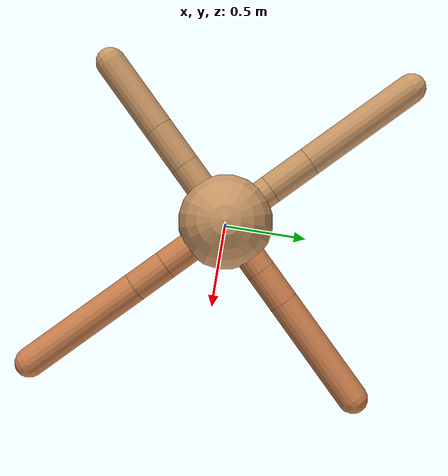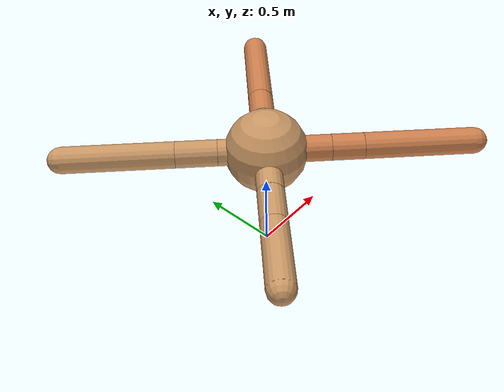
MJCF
<mujoco model="ant">
  <compiler angle="degree" coordinate="local" inertiafromgeom="true" />
  <option integrator="RK4" timestep="0.01" />
  <custom>
    <numeric data="0.0 0.0 0.55 1.0 0.0 0.0 0.0 0.0 1.0 0.0 -1.0 0.0 -1.0 0.0 1.0" name="init_qpos" />
  </custom>
  <default>
    <joint armature="1" damping="1" limited="true" />
    <geom conaffinity="0" condim="3" density="5.0" friction="1.5 0.1 0.1" margin="0.01" rgba="0.8 0.6 0.4 1" />
  </default>
  <worldbody>
    <body name="torso" pos="0 0 0.75">
      <geom name="torso_geom" pos="0 0 0" size="0.25" type="sphere" />

      <body name="front_left_leg" pos="0 0 0">
        <geom fromto="0.0 0.0 0.0 0.22385381751508185 0.22385381751508185 0.0" name="aux_1_geom" size="0.08" type="capsule" rgba=".8 .5 .3 1" />
        <body name="aux_1" pos="0.22385381751508185 0.22385381751508185 0.0">
          <joint axis="0 0 1" name="hip_1" pos="0.0 0.0 0.0" range="-40 40" type="hinge" />
          <geom fromto="0.0 0.0 0.0 0.1410222994383574 0.1410222994383574 0.0" name="left_leg_geom" size="0.08" type="capsule" rgba=".8 .5 .3 1" />
          <body pos="0.1410222994383574 0.1410222994383574 0.0" name="front_left_foot">
            <joint axis="-1 1 0" name="ankle_1" pos="0.0 0.0 0.0" range="30 100" type="hinge" />
            <geom fromto="0.0 0.0 0.0 0.4366073083564766 0.4366073083564766 0.0" name="left_ankle_geom" size="0.08" type="capsule" rgba=".8 .5 .3 1" />
          </body>
        </body>
      </body>
      <body name="front_right_leg" pos="0 0 0">
        <geom fromto="0.0 0.0 0.0 -0.20342077375768214 0.20342077375768214 0.0" name="aux_2_geom" size="0.08" type="capsule" />
        <body name="aux_2" pos="-0.20342077375768214 0.20342077375768214 0.0">
          <joint axis="0 0 1" name="hip_2" pos="0.0 0.0 0.0" range="-40 40" type="hinge" />
          <geom fromto="0.0 0.0 0.0 -0.17622453888643405 0.17622453888643405 0.0" name="right_leg_geom" size="0.08" type="capsule" />
          <body pos="-0.17622453888643405 0.17622453888643405 0.0" name="front_right_foot">
            <joint axis="1 1 0" name="ankle_2" pos="0.0 0.0 0.0" range="-100 -30" type="hinge" />
            <geom fromto="0.0 0.0 0.0 -0.47032848275113737 0.47032848275113737 0.0" name="right_ankle_geom" size="0.08" type="capsule" />
          </body>
        </body>
      </body>
      <body name="left_back_leg" pos="0 0 0">
        <geom fromto="0.0 0.0 0.0 -0.25749866348418926 -0.25749866348418926 0.0" name="aux_3_geom" size="0.08" type="capsule" />
        <body name="aux_3" pos="-0.25749866348418926 -0.25749866348418926 0.0">
          <joint axis="0 0 1" name="hip_3" pos="0.0 0.0 0.0" range="-40 40" type="hinge" />
          <geom fromto="0.0 0.0 0.0 -0.16896073083820146 -0.16896073083820146 0.0" name="back_leg_geom" size="0.08" type="capsule" />
          <body pos="-0.16896073083820146 -0.16896073083820146 0.0" name="left_back_foot">
            <joint axis="-1 1 0" name="ankle_3" pos="0.0 0.0 0.0" range="-100 -30" type="hinge" />
            <geom fromto="0.0 0.0 0.0 -0.3051240306130229 -0.3051240306130229 0.0" name="third_ankle_geom" size="0.08" type="capsule" />
          </body>
        </body>
      </body>
      <body name="right_back_leg" pos="0 0 0">
        <geom fromto="0.0 0.0 0.0 0.27451022714633466 -0.27451022714633466 0.0" name="aux_4_geom" size="0.08" type="capsule" rgba=".8 .5 .3 1" />
        <body name="aux_4" pos="0.27451022714633466 -0.27451022714633466 0.0">
          <joint axis="0 0 1" name="hip_4" pos="0.0 0.0 0.0" range="-40 40" type="hinge" />
          <geom fromto="0.0 0.0 0.0 0.13913847308259203 -0.13913847308259203 0.0" name="rightback_leg_geom" size="0.08" type="capsule" rgba=".8 .5 .3 1" />
          <body pos="0.13913847308259203 -0.13913847308259203 0.0" name="right_back_foot">
            <joint axis="1 1 0" name="ankle_4" pos="0.0 0.0 0.0" range="30 100" type="hinge" />
            <geom fromto="0.0 0.0 0.0 0.4741681108017405 -0.4741681108017405 0.0" name="fourth_ankle_geom" size="0.08" type="capsule" rgba=".8 .5 .3 1" />
          </body>
        </body>
      </body>
    </body>
  </worldbody>
  <actuator>
    <motor ctrllimited="true" ctrlrange="-1.0 1.0" joint="hip_4" gear="150" />
    <motor ctrllimited="true" ctrlrange="-1.0 1.0" joint="ankle_4" gear="150" />
    <motor ctrllimited="true" ctrlrange="-1.0 1.0" joint="hip_1" gear="150" />
    <motor ctrllimited="true" ctrlrange="-1.0 1.0" joint="ankle_1" gear="150" />
    <motor ctrllimited="true" ctrlrange="-1.0 1.0" joint="hip_2" gear="150" />
    <motor ctrllimited="true" ctrlrange="-1.0 1.0" joint="ankle_2" gear="150" />
    <motor ctrllimited="true" ctrlrange="-1.0 1.0" joint="hip_3" gear="150" />
    <motor ctrllimited="true" ctrlrange="-1.0 1.0" joint="ankle_3" gear="150" />
  </actuator>
</mujoco>
